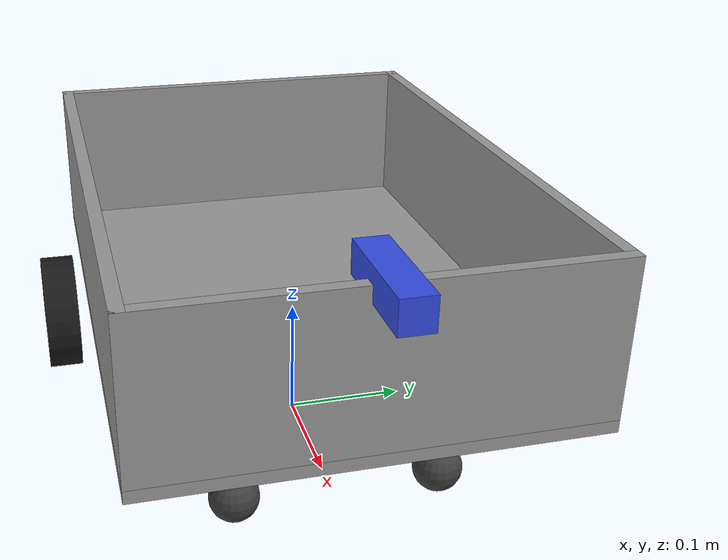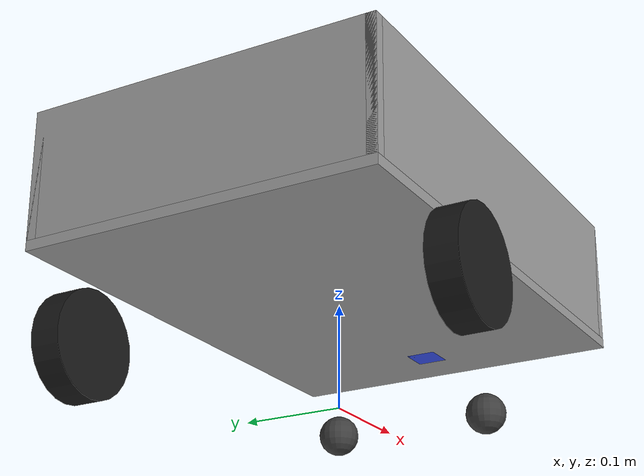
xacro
<?xml version="1.0"?>
<robot xmlns:xacro="http://www.ros.org/wiki/xacro" name="jainbot">

  <!-- ===== Base frames ===== -->
  <link name="base_footprint"/>

  <!-- base_link is chassis center -->
  <link name="base_link">
    <!-- Chassis visual attached directly to base_link -->
    <visual>
      <origin xyz="0 0 0" rpy="0 0 0"/>
      <geometry>
        <box size="0.490 0.345 0.010"/>
      </geometry>
      <material name="grey">
        <color rgba="0.6 0.6 0.6 1.0"/>
      </material>
    </visual>
    <!-- Perimeter walls: 125mm high, 10mm thick -->
    <visual>
      <origin xyz="0.240 0 0.0675" rpy="0 0 0"/>
      <geometry>
        <box size="0.010 0.345 0.125"/>
      </geometry>
      <material name="grey"/>
    </visual>
    <visual>
      <origin xyz="-0.240 0 0.0675" rpy="0 0 0"/>
      <geometry>
        <box size="0.010 0.345 0.125"/>
      </geometry>
      <material name="grey"/>
    </visual>
    <visual>
      <origin xyz="0 0.1675 0.0675" rpy="0 0 0"/>
      <geometry>
        <box size="0.490 0.010 0.125"/>
      </geometry>
      <material name="grey"/>
    </visual>
    <visual>
      <origin xyz="0 -0.1675 0.0675" rpy="0 0 0"/>
      <geometry>
        <box size="0.490 0.010 0.125"/>
      </geometry>
      <material name="grey"/>
    </visual>
  </link>

  <!-- base_footprint at z=0 (ground), base_link raised above it -->
  <joint name="base_footprint_to_base_link" type="fixed">
    <parent link="base_footprint"/>
    <child link="base_link"/>
    <origin xyz="0 0 0.1075" rpy="0 0 0"/>
  </joint>

  <!-- ===== Wheels (links kept same names for ros2_control) ===== -->
  <link name="left_wheel">
    <visual>
      <!-- cylinder axis is Z; rotate so wheel axle is Y -->
      <origin xyz="0 0 0" rpy="1.57079632679 0 0"/>
      <geometry>
        <cylinder radius="0.0525" length="0.030"/>
      </geometry>
      <material name="black">
        <color rgba="0.1 0.1 0.1 1.0"/>
      </material>
    </visual>
  </link>

  <link name="right_wheel">
    <visual>
      <origin xyz="0 0 0" rpy="1.57079632679 0 0"/>
      <geometry>
        <cylinder radius="0.0525" length="0.030"/>
      </geometry>
      <material name="black">
        <color rgba="0.1 0.1 0.1 1.0"/>
      </material>
    </visual>
  </link>

  <!-- Wheel joints kept as continuous (ros2_control uses these) -->
  <joint name="left_wheel_joint" type="continuous">
    <parent link="base_link"/>
    <child  link="left_wheel"/>
    <origin xyz="-0.135 -0.195 -0.055" rpy="0 0 0"/>
    <axis xyz="0 -1 0"/>
  </joint>

  <joint name="right_wheel_joint" type="continuous">
    <parent link="base_link"/>
    <child  link="right_wheel"/>
    <origin xyz="-0.135 0.195 -0.055" rpy="0 0 0"/>
    <axis xyz="0 -1 0"/>
  </joint>

  <!-- ===== Casters (visual-only) ===== -->
  <link name="caster_left">
    <visual>
      <geometry>
        <sphere radius="0.020"/>
      </geometry>
      <material name="dark_grey">
        <color rgba="0.25 0.25 0.25 1.0"/>
      </material>
    </visual>
  </link>

  <link name="caster_right">
    <visual>
      <geometry>
        <sphere radius="0.020"/>
      </geometry>
      <material name="dark_grey">
        <color rgba="0.25 0.25 0.25 1.0"/>
      </material>
    </visual>
  </link>

  <!-- Casters: x=+0.145, y=+/-0.0825; put them near ground -->
  <!-- wheel ground contact is at z = -0.1075 in base_link frame -->
  <!-- caster center z = -0.1075 + 0.020 = -0.0875 -->
  <joint name="caster_left_joint" type="fixed">
    <parent link="base_link"/>
    <child link="caster_left"/>
    <origin xyz="0.145 -0.0825 -0.0875" rpy="0 0 0"/>
  </joint>

  <joint name="caster_right_joint" type="fixed">
    <parent link="base_link"/>
    <child link="caster_right"/>
    <origin xyz="0.145 0.0825 -0.0875" rpy="0 0 0"/>
  </joint>

  <!-- ===== IMU (visual-only link, useful for TF) ===== -->
  <link name="imu_link">
    <visual>
      <geometry>
        <box size="0.030 0.030 0.010"/>
      </geometry>
      <material name="blue">
        <color rgba="0.2 0.3 0.9 1.0"/>
      </material>
    </visual>
  </link>

  <!-- IMU: 60mm from front => x=+0.185, 175mm from sides => basically centerline (y=0) -->
  <joint name="imu_joint" type="fixed">
    <parent link="base_link"/>
    <child link="imu_link"/>
    <!-- place it slightly above chassis center so it appears on top -->
    <origin xyz="0.185 0.0 0.0" rpy="0 3.14159265359 0"/>
  </joint>

  <!-- ===== Camera (RealSense D435) ===== -->
  <link name="camera_link">
    <visual>
      <geometry>
        <box size="0.090 0.025 0.025"/>
      </geometry>
      <material name="blue"/>
    </visual>
  </link>

  <!-- Camera: front of chassis, on top of wall -->
  <joint name="camera_joint" type="fixed">
    <parent link="base_link"/>
    <child link="camera_link"/>
    <origin xyz="0.245 0.0 0.130" rpy="0 0 0"/>
  </joint>

  <!-- =========================
       ros2_control (UNCHANGED)
       ========================= -->
  <ros2_control name="JainbotSystem" type="system">
    <hardware>
      <plugin>jainbot/JainbotSystem</plugin>

      <!-- Encoders -->
      <param name="enc_gpiochip">gpiochip4</param>
      <param name="left_enc_a">16</param>
      <param name="left_enc_b">26</param>
      <param name="right_enc_a">17</param>
      <param name="right_enc_b">27</param>

      <!-- Wheel counts-per-revolution at the output shaft (after gearbox, quad x4) -->
      <param name="cpr_wheel">1980</param>

      <!-- GPIO & PWM config -->
      <param name="gpiochip">gpiochip4</param>
      <param name="m1_en">22</param>
      <param name="m2_en">23</param>
      <param name="m1_dir">24</param>
      <param name="m2_dir">25</param>

      <param name="pwmchip">pwmchip0</param>
      <param name="pwm0_channel">0</param>
      <param name="pwm1_channel">1</param>
      <param name="pwm_period_ns">50000</param>

      <!-- Control mapping -->
      <param name="max_wheel_speed_radps">20.0</param>
      <param name="invert_left_dir">false</param>
      <param name="invert_right_dir">false</param>
      <param name="invert_left_enc">true</param>
      <param name="invert_right_enc">true</param>
    </hardware>

    <joint name="left_wheel_joint">
      <command_interface name="velocity"/>
      <state_interface   name="position"/>
      <state_interface   name="velocity"/>
    </joint>

    <joint name="right_wheel_joint">
      <command_interface name="velocity"/>
      <state_interface   name="position"/>
      <state_interface   name="velocity"/>
    </joint>
  </ros2_control>

</robot>
